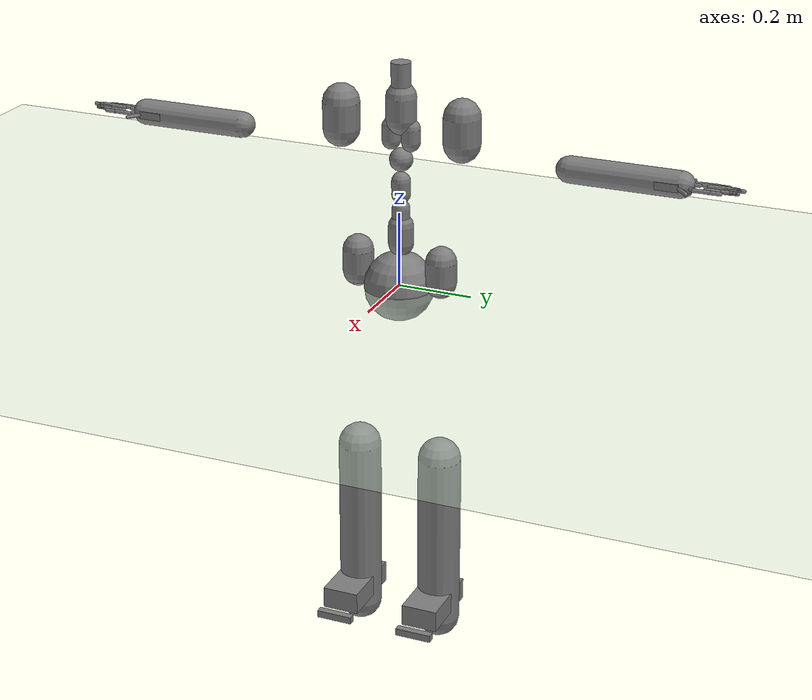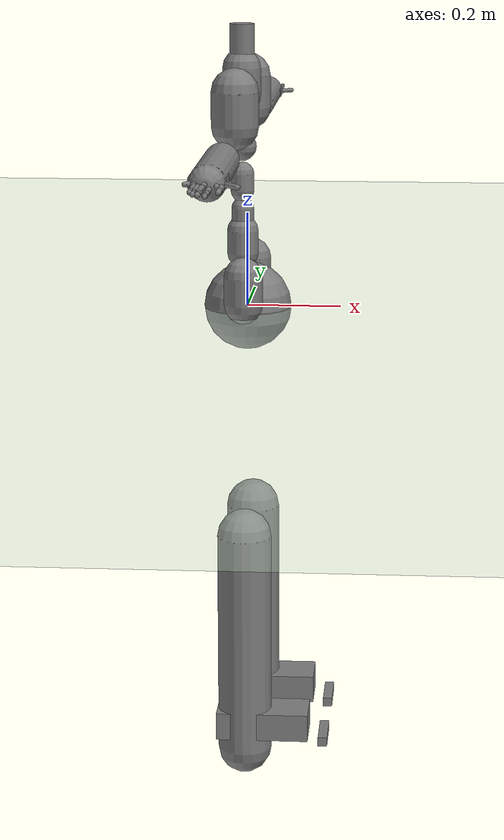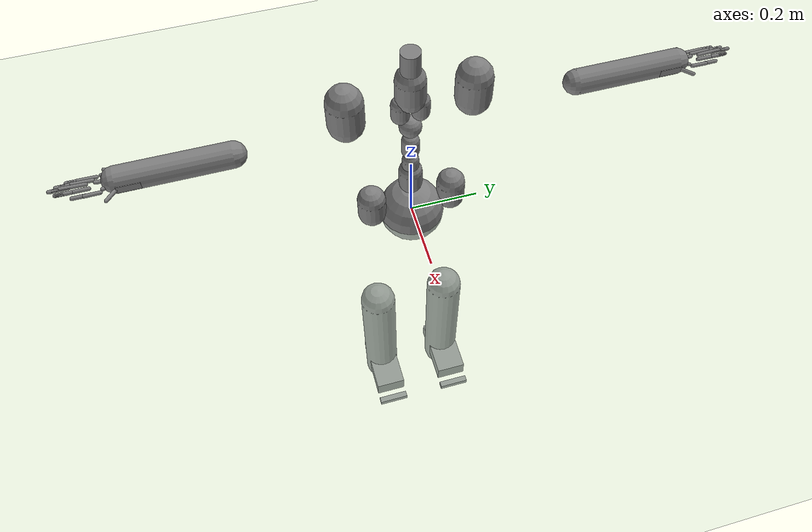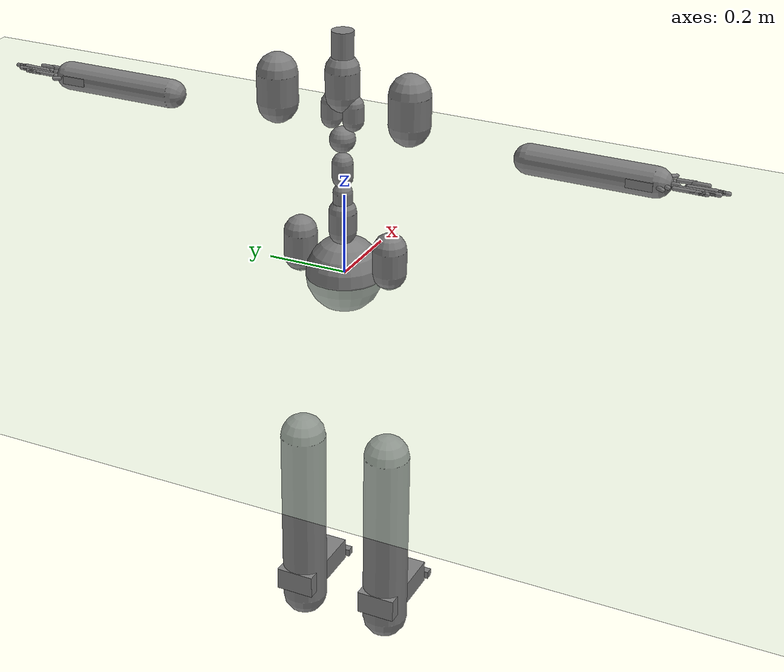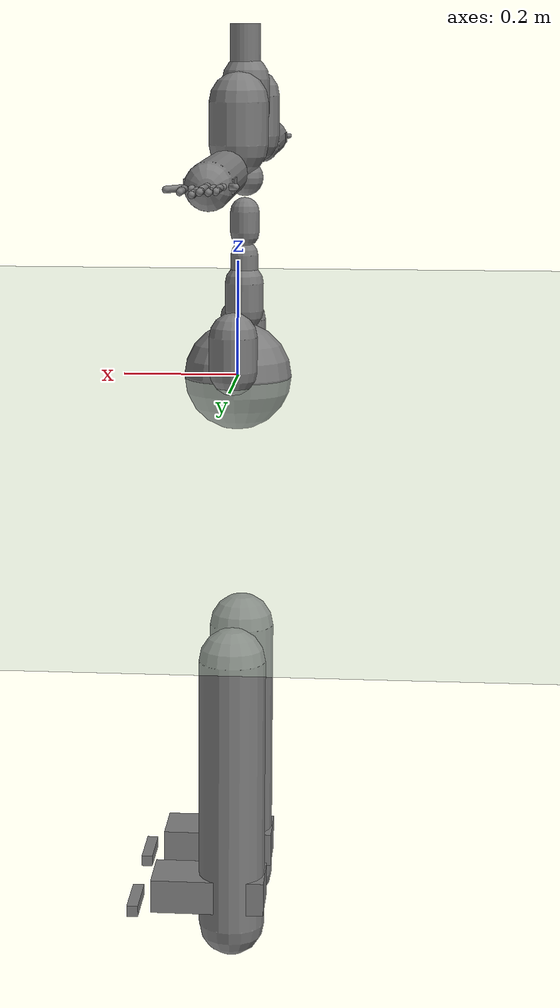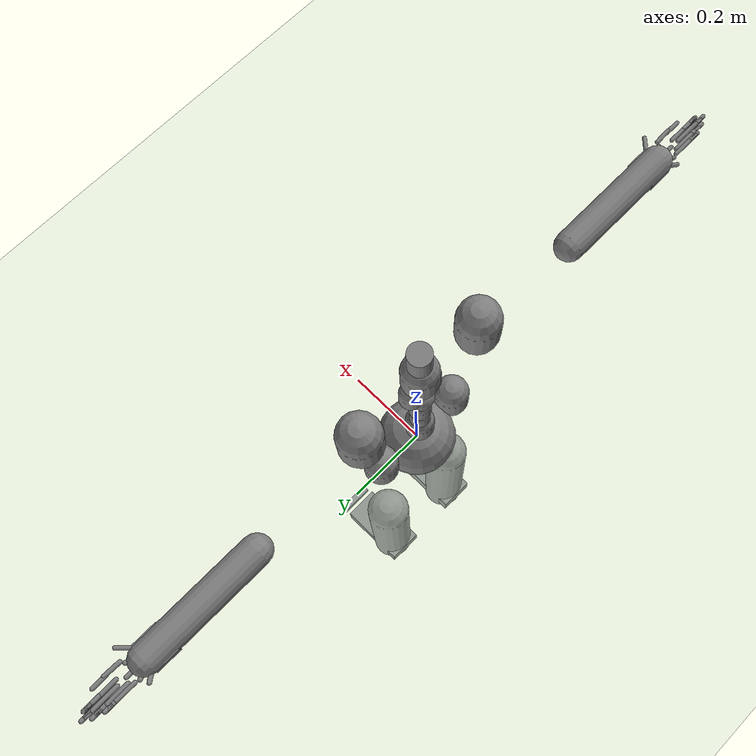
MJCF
<?xml version="1.0" ?>
<mujoco model="humanoid">
  <compiler coordinate="local"/>
  <statistic extent="2" center="0 0 1"/>
  <option timestep="0.00555"/>
  <default>
    <motor ctrlrange="-1 1" ctrllimited="true"/>
    <geom type="capsule" condim="1" friction="1.0 0.05 0.05" solimp=".9 .99 .003" solref=".015 1"/>
    <joint type="hinge" damping="0.1" stiffness="5" armature=".007" limited="true" solimplimit="0 .99 .01"/>
    <site size=".04" group="3"/>
  </default>
  <asset>
    <texture type="skybox" builtin="gradient" rgb1=".4 .5 .6" rgb2="0 0 0" width="100" height="100"/>
    <texture builtin="flat" height="1278" mark="cross" markrgb="1 1 1" name="texgeom" random="0.01" rgb1="0.8 0.6 0.4" rgb2="0.8 0.6 0.4" type="cube" width="127"/>
    <texture builtin="checker" height="100" name="texplane" rgb1="0 0 0" rgb2="0.8 0.8 0.8" type="2d" width="100"/>
    <material name="MatPlane" reflectance="0.5" shininess="1" specular="1" texrepeat="60 60" texture="texplane"/>
    <material name="geom" texture="texgeom" texuniform="true"/>
  </asset>
  <worldbody>
    <light cutoff="100" diffuse="1 1 1" dir="-0 0 -1.3" directional="true" exponent="1" pos="0 0 1.3" specular=".1 .1 .1"/>
    <geom conaffinity="1" condim="3" name="floor" pos="0 0 0" rgba="0.8 0.9 0.8 1" size="100 100 .2" type="plane" material="MatPlane"/>
    <body name="pHipOrigin" pos="0 0 0">
      <freejoint name="pHipOrigin"/>
      <geom type="sphere" contype="1" conaffinity="1" density="4629.6296296296305" size="0.09387" pos="0.0000 0.0000 -0.0000"/>
      <body name="jL5S1" pos="-0.01057824 0 0.09520390">
        <geom type="capsule" contype="1" conaffinity="1" density="1000" fromto="0 0 0.01916 0 0 0.06705" size="0.03353"/>
        <joint name="jL5S1_x" type="hinge" pos="0 0 0" axis="1 0 0" stiffness="500" damping="500" armature="0.02" range="-180.0000 180.0000"/>
        <joint name="jL5S1_y" type="hinge" pos="0 0 0" axis="0 1 0" stiffness="500" damping="500" armature="0.02" range="-180.0000 180.0000"/>
        <joint name="jL5S1_z" type="hinge" pos="0 0 0" axis="0 0 1" stiffness="500" damping="500" armature="0.02" range="-180.0000 180.0000"/>
        <body name="jL4L3" pos="0 0 0.06800943">
          <geom type="capsule" contype="1" conaffinity="1" density="1000" fromto="0 0 0.01360 0 0 0.04761" size="0.02380"/>
          <joint name="jL4L3_x" type="hinge" pos="0 0 0" axis="1 0 0" stiffness="500" damping="500" armature="0.02" range="-180.0000 180.0000"/>
          <joint name="jL4L3_y" type="hinge" pos="0 0 0" axis="0 1 0" stiffness="500" damping="500" armature="0.02" range="-180.0000 180.0000"/>
          <joint name="jL4L3_z" type="hinge" pos="0 0 0" axis="0 0 1" stiffness="500" damping="500" armature="0.02" range="-180.0000 180.0000"/>
          <body name="jL1T12" pos="-0.00055272 0 0.07164293">
            <geom type="capsule" contype="1" conaffinity="1" density="1000" fromto="0 0 0.01433 0 0 0.05015" size="0.02508"/>
            <joint name="jL1T12_x" type="hinge" pos="0 0 0" axis="1 0 0" stiffness="500" damping="500" armature="0.02" range="-180.0000 180.0000"/>
            <joint name="jL1T12_y" type="hinge" pos="0 0 0" axis="0 1 0" stiffness="500" damping="500" armature="0.02" range="-180.0000 180.0000"/>
            <joint name="jL1T12_z" type="hinge" pos="0 0 0" axis="0 0 1" stiffness="500" damping="500" armature="0.02" range="-180.0000 180.0000"/>
            <body name="jT9T8" pos="-0.00059824 0 0.07739216">
              <geom type="sphere" contype="1" conaffinity="1" density="1000" size="0.03096" pos="0.000 0.0000 0.030958"/>
              <joint name="jT9T8_x" type="hinge" pos="0 0 0" axis="1 0 0" stiffness="500" damping="500" armature="0.02" range="-180.0000 180.0000"/>
              <joint name="jT9T8_y" type="hinge" pos="0 0 0" axis="0 1 0" stiffness="500" damping="500" armature="0.02" range="-180.0000 180.0000"/>
              <joint name="jT9T8_z" type="hinge" pos="0 0 0" axis="0 0 1" stiffness="500" damping="500" armature="0.02" range="-180.0000 180.0000"/>
              <body name="jT1C7" pos="0 0 0.11539599">
                <geom type="capsule" contype="1" conaffinity="1" density="1000" fromto="0 0 0.02308 0 0 0.08078" size="0.04039"/>
                <joint name="jT1C7_x" type="hinge" pos="0 0 0" axis="1 0 0" stiffness="500" damping="500" armature="0.02" range="-180.0000 180.0000"/>
                <joint name="jT1C7_y" type="hinge" pos="0 0 0" axis="0 1 0" stiffness="500" damping="500" armature="0.02" range="-180.0000 180.0000"/>
                <joint name="jT1C7_z" type="hinge" pos="0 0 0" axis="0 0 1" stiffness="500" damping="500" armature="0.02" range="-180.0000 180.0000"/>
                <body name="jC1Head" pos="0.00102152 0 0.08658718">
                  <geom type="cylinder" contype="1" conaffinity="1" density="1000" fromto="0 0 0 0 0 0.08659" size="0.02598"/>
                  <joint name="jC1Head_x" type="hinge" pos="0 0 0" axis="1 0 0" stiffness="500" damping="500" armature="0.02" range="-180.0000 180.0000"/>
                  <joint name="jC1Head_y" type="hinge" pos="0 0 0" axis="0 1 0" stiffness="500" damping="500" armature="0.02" range="-180.0000 180.0000"/>
                  <joint name="jC1Head_z" type="hinge" pos="0 0 0" axis="0 0 1" stiffness="500" damping="500" armature="0.02" range="-180.0000 180.0000"/>
                </body>
              </body>
              <body name="jRightT4Shoulder" pos="0 -0.02712495 0.06613659">
                <geom type="capsule" contype="1" conaffinity="1" density="1000" fromto="0 0 0.01430 0 0 0.05004" size="0.02502"/>
                <joint name="jRightT4Shoulder_x" type="hinge" pos="0 0 0" axis="1 0 0" stiffness="500" damping="500" armature="0.02" range="-180.0000 180.0000"/>
                <joint name="jRightT4Shoulder_y" type="hinge" pos="0 0 0" axis="0 1 0" stiffness="500" damping="500" armature="0.02" range="-180.0000 180.0000"/>
                <joint name="jRightT4Shoulder_z" type="hinge" pos="0 0 0" axis="0 0 1" stiffness="500" damping="500" armature="0.02" range="-180.0000 180.0000"/>
                <body name="jRightShoulder" pos="0 -0.14019074 0">
                  <geom type="capsule" contype="1" conaffinity="1" density="1000" fromto="0 0 0.02804 0 0 0.09813" size="0.04907"/>
                  <joint name="jRightShoulder_x" type="hinge" pos="0 0 0" axis="1 0 0" stiffness="500" damping="500" armature="0.02" range="-180.0000 180.0000"/>
                  <joint name="jRightShoulder_y" type="hinge" pos="0 0 0" axis="0 1 0" stiffness="500" damping="500" armature="0.02" range="-180.0000 180.0000"/>
                  <joint name="jRightShoulder_z" type="hinge" pos="0 0 0" axis="0 0 1" stiffness="500" damping="500" armature="0.02" range="-180.0000 180.0000"/>
                  <body name="jRightElbow" pos="0 -0.28704521 0">
                    <geom type="capsule" contype="1" conaffinity="1" density="1000" fromto="0 0 0 0.00000000 -0.28704521 0.00000000" size="0.03445"/>
                    <joint name="jRightElbow_x" type="hinge" pos="0 0 0" axis="1 0 0" stiffness="500" damping="500" armature="0.02" range="-180.0000 180.0000"/>
                    <joint name="jRightElbow_y" type="hinge" pos="0 0 0" axis="0 1 0" stiffness="500" damping="500" armature="0.02" range="-180.0000 180.0000"/>
                    <joint name="jRightElbow_z" type="hinge" pos="0 0 0" axis="0 0 1" stiffness="500" damping="500" armature="0.02" range="-180.0000 180.0000"/>
                    <body name="jRightWrist" pos="0.00010407 -0.25857914 0">
                      <geom density="1000" type="box" pos="0 0 0" size="0.035 0.03 0.01" quat="1.0000 0.0000 0.0000 0.0000"/>
                      <joint name="jRightWrist_x" type="hinge" pos="0 0 0" axis="1 0 0" stiffness="500" damping="500" armature="0.02" range="-180.0000 180.0000"/>
                      <joint name="jRightWrist_y" type="hinge" pos="0 0 0" axis="0 1 0" stiffness="500" damping="500" armature="0.02" range="-180.0000 180.0000"/>
                      <joint name="jRightWrist_z" type="hinge" pos="0 0 0" axis="0 0 1" stiffness="500" damping="500" armature="0.02" range="-180.0000 180.0000"/>
                      <body name="jRightFirstCMC" pos="0.02867077 -0.02748255 -0.00129839">
                        <geom type="capsule" contype="1" conaffinity="1" density="1000" fromto="0 0 0 0.02867077 -0.02748255 -0.00129839" size="0.005"/>
                        <joint name="jRightFirstCMC_x" type="hinge" pos="0 0 0" axis="1 0 0" stiffness="500" damping="500" armature="0.02" range="-180.0000 180.0000"/>
                        <joint name="jRightFirstCMC_y" type="hinge" pos="0 0 0" axis="0 1 0" stiffness="500" damping="500" armature="0.02" range="-180.0000 180.0000"/>
                        <joint name="jRightFirstCMC_z" type="hinge" pos="0 0 0" axis="0 0 1" stiffness="500" damping="500" armature="0.02" range="-180.0000 180.0000"/>
                        <body name="jRightFirstMCP" pos="0.00135726 -0.03830100 0.00080930">
                          <geom type="capsule" contype="1" conaffinity="1" density="1000" fromto="0 0 0 0.00135726 -0.03830100 0.00080930" size="0.005"/>
                          <joint name="jRightFirstMCP_x" type="hinge" pos="0 0 0" axis="1 0 0" stiffness="500" damping="500" armature="0.02" range="-180.0000 180.0000"/>
                          <joint name="jRightFirstMCP_y" type="hinge" pos="0 0 0" axis="0 1 0" stiffness="500" damping="500" armature="0.02" range="-180.0000 180.0000"/>
                          <joint name="jRightFirstMCP_z" type="hinge" pos="0 0 0" axis="0 0 1" stiffness="500" damping="500" armature="0.02" range="-180.0000 180.0000"/>
                          <body name="jRightIP" pos="0 -0.03366405 0">
                            <geom type="capsule" contype="1" conaffinity="1" density="1000" fromto="0 0 0 0.00000000 -0.03366405 0.00000000" size="0.005"/>
                            <joint name="jRightIP_x" type="hinge" pos="0 0 0" axis="1 0 0" stiffness="500" damping="500" armature="0.02" range="-180.0000 180.0000"/>
                            <joint name="jRightIP_y" type="hinge" pos="0 0 0" axis="0 1 0" stiffness="500" damping="500" armature="0.02" range="-180.0000 180.0000"/>
                            <joint name="jRightIP_z" type="hinge" pos="0 0 0" axis="0 0 1" stiffness="500" damping="500" armature="0.02" range="-180.0000 180.0000"/>
                          </body>
                        </body>
                      </body>
                      <body name="jRightSecondCMC" pos="0.01036833 -0.03029297 -0.00052838">
                        <geom type="capsule" contype="1" conaffinity="1" density="1000" fromto="0 0 0 0.01036833 -0.03029297 -0.00052838" size="0.005"/>
                        <joint name="jRightSecondCMC_x" type="hinge" pos="0 0 0" axis="1 0 0" stiffness="500" damping="500" armature="0.02" range="-180.0000 180.0000"/>
                        <joint name="jRightSecondCMC_y" type="hinge" pos="0 0 0" axis="0 1 0" stiffness="500" damping="500" armature="0.02" range="-180.0000 180.0000"/>
                        <joint name="jRightSecondCMC_z" type="hinge" pos="0 0 0" axis="0 0 1" stiffness="500" damping="500" armature="0.02" range="-180.0000 180.0000"/>
                        <body name="jRightSecondMCP" pos="-0.00038861 -0.06198025 -0.00064294">
                          <geom type="capsule" contype="1" conaffinity="1" density="1000" fromto="0 0 0 -0.00038861 -0.06198025 -0.00064294" size="0.005"/>
                          <joint name="jRightSecondMCP_x" type="hinge" pos="0 0 0" axis="1 0 0" stiffness="500" damping="500" armature="0.02" range="-180.0000 180.0000"/>
                          <joint name="jRightSecondMCP_y" type="hinge" pos="0 0 0" axis="0 1 0" stiffness="500" damping="500" armature="0.02" range="-180.0000 180.0000"/>
                          <joint name="jRightSecondMCP_z" type="hinge" pos="0 0 0" axis="0 0 1" stiffness="500" damping="500" armature="0.02" range="-180.0000 180.0000"/>
                          <body name="jRightSecondPIP" pos="0 -0.03964959 0">
                            <geom type="capsule" contype="1" conaffinity="1" density="1000" fromto="0 0 0 0.00000000 -0.03964959 0.00000000" size="0.005"/>
                            <joint name="jRightSecondPIP_x" type="hinge" pos="0 0 0" axis="1 0 0" stiffness="500" damping="500" armature="0.02" range="-180.0000 180.0000"/>
                            <joint name="jRightSecondPIP_y" type="hinge" pos="0 0 0" axis="0 1 0" stiffness="500" damping="500" armature="0.02" range="-180.0000 180.0000"/>
                            <joint name="jRightSecondPIP_z" type="hinge" pos="0 0 0" axis="0 0 1" stiffness="500" damping="500" armature="0.02" range="-180.0000 180.0000"/>
                            <body name="jRightSecondDIP" pos="0 -0.01991093 0">
                              <geom type="capsule" contype="1" conaffinity="1" density="1000" fromto="0 0 0 0.00000000 -0.01991093 0.00000000" size="0.005"/>
                              <joint name="jRightSecondDIP_x" type="hinge" pos="0 0 0" axis="1 0 0" stiffness="500" damping="500" armature="0.02" range="-180.0000 180.0000"/>
                              <joint name="jRightSecondDIP_y" type="hinge" pos="0 0 0" axis="0 1 0" stiffness="500" damping="500" armature="0.02" range="-180.0000 180.0000"/>
                              <joint name="jRightSecondDIP_z" type="hinge" pos="0 0 0" axis="0 0 1" stiffness="500" damping="500" armature="0.02" range="-180.0000 180.0000"/>
                            </body>
                          </body>
                        </body>
                      </body>
                      <body name="jRightThirdCMC" pos="-0.00069413 -0.03753679 0.00157810">
                        <geom type="capsule" contype="1" conaffinity="1" density="1000" fromto="0 0 0 -0.00069413 -0.03753679 0.00157810" size="0.005"/>
                        <joint name="jRightThirdCMC_x" type="hinge" pos="0 0 0" axis="1 0 0" stiffness="500" damping="500" armature="0.02" range="-180.0000 180.0000"/>
                        <joint name="jRightThirdCMC_y" type="hinge" pos="0 0 0" axis="0 1 0" stiffness="500" damping="500" armature="0.02" range="-180.0000 180.0000"/>
                        <joint name="jRightThirdCMC_z" type="hinge" pos="0 0 0" axis="0 0 1" stiffness="500" damping="500" armature="0.02" range="-180.0000 180.0000"/>
                        <body name="jRightThirdMCP" pos="-0.00072357 -0.05994753 0.00163094">
                          <geom type="capsule" contype="1" conaffinity="1" density="1000" fromto="0 0 0 -0.00072357 -0.05994753 0.00163094" size="0.005"/>
                          <joint name="jRightThirdMCP_x" type="hinge" pos="0 0 0" axis="1 0 0" stiffness="500" damping="500" armature="0.02" range="-180.0000 180.0000"/>
                          <joint name="jRightThirdMCP_y" type="hinge" pos="0 0 0" axis="0 1 0" stiffness="500" damping="500" armature="0.02" range="-180.0000 180.0000"/>
                          <joint name="jRightThirdMCP_z" type="hinge" pos="0 0 0" axis="0 0 1" stiffness="500" damping="500" armature="0.02" range="-180.0000 180.0000"/>
                          <body name="jRightThirdPIP" pos="0 -0.03983186 0">
                            <geom type="capsule" contype="1" conaffinity="1" density="1000" fromto="0 0 0 0.00000000 -0.03983186 0.00000000" size="0.005"/>
                            <joint name="jRightThirdPIP_x" type="hinge" pos="0 0 0" axis="1 0 0" stiffness="500" damping="500" armature="0.02" range="-180.0000 180.0000"/>
                            <joint name="jRightThirdPIP_y" type="hinge" pos="0 0 0" axis="0 1 0" stiffness="500" damping="500" armature="0.02" range="-180.0000 180.0000"/>
                            <joint name="jRightThirdPIP_z" type="hinge" pos="0 0 0" axis="0 0 1" stiffness="500" damping="500" armature="0.02" range="-180.0000 180.0000"/>
                            <body name="jRightThirdDIP" pos="0 -0.02356356 0">
                              <geom type="capsule" contype="1" conaffinity="1" density="1000" fromto="0 0 0 0.00000000 -0.02356356 0.00000000" size="0.005"/>
                              <joint name="jRightThirdDIP_x" type="hinge" pos="0 0 0" axis="1 0 0" stiffness="500" damping="500" armature="0.02" range="-180.0000 180.0000"/>
                              <joint name="jRightThirdDIP_y" type="hinge" pos="0 0 0" axis="0 1 0" stiffness="500" damping="500" armature="0.02" range="-180.0000 180.0000"/>
                              <joint name="jRightThirdDIP_z" type="hinge" pos="0 0 0" axis="0 0 1" stiffness="500" damping="500" armature="0.02" range="-180.0000 180.0000"/>
                            </body>
                          </body>
                        </body>
                      </body>
                      <body name="jRightFourthCMC" pos="-0.01084320 -0.03020011 0.00071086">
                        <geom type="capsule" contype="1" conaffinity="1" density="1000" fromto="0 0 0 -0.01084320 -0.03020011 0.00071086" size="0.005"/>
                        <joint name="jRightFourthCMC_x" type="hinge" pos="0 0 0" axis="1 0 0" stiffness="500" damping="500" armature="0.02" range="-180.0000 180.0000"/>
                        <joint name="jRightFourthCMC_y" type="hinge" pos="0 0 0" axis="0 1 0" stiffness="500" damping="500" armature="0.02" range="-180.0000 180.0000"/>
                        <joint name="jRightFourthCMC_z" type="hinge" pos="0 0 0" axis="0 0 1" stiffness="500" damping="500" armature="0.02" range="-180.0000 180.0000"/>
                        <body name="jRightFourthMCP" pos="-0.00037073 -0.05081267 0.00079831">
                          <geom type="capsule" contype="1" conaffinity="1" density="1000" fromto="0 0 0 -0.00037073 -0.05081267 0.00079831" size="0.005"/>
                          <joint name="jRightFourthMCP_x" type="hinge" pos="0 0 0" axis="1 0 0" stiffness="500" damping="500" armature="0.02" range="-180.0000 180.0000"/>
                          <joint name="jRightFourthMCP_y" type="hinge" pos="0 0 0" axis="0 1 0" stiffness="500" damping="500" armature="0.02" range="-180.0000 180.0000"/>
                          <joint name="jRightFourthMCP_z" type="hinge" pos="0 0 0" axis="0 0 1" stiffness="500" damping="500" armature="0.02" range="-180.0000 180.0000"/>
                          <body name="jRightFourthPIP" pos="0 -0.03931124 0">
                            <geom type="capsule" contype="1" conaffinity="1" density="1000" fromto="0 0 0 0.00000000 -0.03931124 0.00000000" size="0.005"/>
                            <joint name="jRightFourthPIP_x" type="hinge" pos="0 0 0" axis="1 0 0" stiffness="500" damping="500" armature="0.02" range="-180.0000 180.0000"/>
                            <joint name="jRightFourthPIP_y" type="hinge" pos="0 0 0" axis="0 1 0" stiffness="500" damping="500" armature="0.02" range="-180.0000 180.0000"/>
                            <joint name="jRightFourthPIP_z" type="hinge" pos="0 0 0" axis="0 0 1" stiffness="500" damping="500" armature="0.02" range="-180.0000 180.0000"/>
                            <body name="jRightFourthDIP" pos="0 -0.02392031 0">
                              <geom type="capsule" contype="1" conaffinity="1" density="1000" fromto="0 0 0 0.00000000 -0.02392031 0.00000000" size="0.005"/>
                              <joint name="jRightFourthDIP_x" type="hinge" pos="0 0 0" axis="1 0 0" stiffness="500" damping="500" armature="0.02" range="-180.0000 180.0000"/>
                              <joint name="jRightFourthDIP_y" type="hinge" pos="0 0 0" axis="0 1 0" stiffness="500" damping="500" armature="0.02" range="-180.0000 180.0000"/>
                              <joint name="jRightFourthDIP_z" type="hinge" pos="0 0 0" axis="0 0 1" stiffness="500" damping="500" armature="0.02" range="-180.0000 180.0000"/>
                            </body>
                          </body>
                        </body>
                      </body>
                      <body name="jRightFifthCMC" pos="-0.01897285 -0.02643650 0.00052151">
                        <geom type="capsule" contype="1" conaffinity="1" density="1000" fromto="0 0 0 -0.01897285 -0.02643650 0.00052151" size="0.005"/>
                        <joint name="jRightFifthCMC_x" type="hinge" pos="0 0 0" axis="1 0 0" stiffness="500" damping="500" armature="0.02" range="-180.0000 180.0000"/>
                        <joint name="jRightFifthCMC_y" type="hinge" pos="0 0 0" axis="0 1 0" stiffness="500" damping="500" armature="0.02" range="-180.0000 180.0000"/>
                        <joint name="jRightFifthCMC_z" type="hinge" pos="0 0 0" axis="0 0 1" stiffness="500" damping="500" armature="0.02" range="-180.0000 180.0000"/>
                        <body name="jRightFifthMCP" pos="-0.00000666 -0.04512176 0.00062093">
                          <geom type="capsule" contype="1" conaffinity="1" density="1000" fromto="0 0 0 -0.00000666 -0.04512176 0.00062093" size="0.005"/>
                          <joint name="jRightFifthMCP_x" type="hinge" pos="0 0 0" axis="1 0 0" stiffness="500" damping="500" armature="0.02" range="-180.0000 180.0000"/>
                          <joint name="jRightFifthMCP_y" type="hinge" pos="0 0 0" axis="0 1 0" stiffness="500" damping="500" armature="0.02" range="-180.0000 180.0000"/>
                          <joint name="jRightFifthMCP_z" type="hinge" pos="0 0 0" axis="0 0 1" stiffness="500" damping="500" armature="0.02" range="-180.0000 180.0000"/>
                          <body name="jRightFifthPIP" pos="0 -0.03409718 0">
                            <geom type="capsule" contype="1" conaffinity="1" density="1000" fromto="0 0 0 0.00000000 -0.03409718 0.00000000" size="0.005"/>
                            <joint name="jRightFifthPIP_x" type="hinge" pos="0 0 0" axis="1 0 0" stiffness="500" damping="500" armature="0.02" range="-180.0000 180.0000"/>
                            <joint name="jRightFifthPIP_y" type="hinge" pos="0 0 0" axis="0 1 0" stiffness="500" damping="500" armature="0.02" range="-180.0000 180.0000"/>
                            <joint name="jRightFifthPIP_z" type="hinge" pos="0 0 0" axis="0 0 1" stiffness="500" damping="500" armature="0.02" range="-180.0000 180.0000"/>
                            <body name="jRightFifthDIP" pos="0 -0.01906925 0">
                              <geom type="capsule" contype="1" conaffinity="1" density="1000" fromto="0 0 0 0.00000000 -0.01906925 0.00000000" size="0.005"/>
                              <joint name="jRightFifthDIP_x" type="hinge" pos="0 0 0" axis="1 0 0" stiffness="500" damping="500" armature="0.02" range="-180.0000 180.0000"/>
                              <joint name="jRightFifthDIP_y" type="hinge" pos="0 0 0" axis="0 1 0" stiffness="500" damping="500" armature="0.02" range="-180.0000 180.0000"/>
                              <joint name="jRightFifthDIP_z" type="hinge" pos="0 0 0" axis="0 0 1" stiffness="500" damping="500" armature="0.02" range="-180.0000 180.0000"/>
                            </body>
                          </body>
                        </body>
                      </body>
                    </body>
                  </body>
                </body>
              </body>
              <body name="jLeftT4Shoulder" pos="0 0.02708384 0.06603634">
                <geom type="capsule" contype="1" conaffinity="1" density="1000" fromto="0 0 0.01427 0 0 0.04996" size="0.02498"/>
                <joint name="jLeftT4Shoulder_x" type="hinge" pos="0 0 0" axis="1 0 0" stiffness="500" damping="500" armature="0.02" range="-180.0000 180.0000"/>
                <joint name="jLeftT4Shoulder_y" type="hinge" pos="0 0 0" axis="0 1 0" stiffness="500" damping="500" armature="0.02" range="-180.0000 180.0000"/>
                <joint name="jLeftT4Shoulder_z" type="hinge" pos="0 0 0" axis="0 0 1" stiffness="500" damping="500" armature="0.02" range="-180.0000 180.0000"/>
                <body name="jLeftShoulder" pos="0 0.13957411 0">
                  <geom type="capsule" contype="1" conaffinity="1" density="1000" fromto="0 0 0.02791 0 0 0.09770" size="0.04885"/>
                  <joint name="jLeftShoulder_x" type="hinge" pos="0 0 0" axis="1 0 0" stiffness="500" damping="500" armature="0.02" range="-180.0000 180.0000"/>
                  <joint name="jLeftShoulder_y" type="hinge" pos="0 0 0" axis="0 1 0" stiffness="500" damping="500" armature="0.02" range="-180.0000 180.0000"/>
                  <joint name="jLeftShoulder_z" type="hinge" pos="0 0 0" axis="0 0 1" stiffness="500" damping="500" armature="0.02" range="-180.0000 180.0000"/>
                  <body name="jLeftElbow" pos="0 0.28637841 0">
                    <geom type="capsule" contype="1" conaffinity="1" density="1000" fromto="0 0 0 0.00000000 0.28637841 0.00000000" size="0.03437"/>
                    <joint name="jLeftElbow_x" type="hinge" pos="0 0 0" axis="1 0 0" stiffness="500" damping="500" armature="0.02" range="-180.0000 180.0000"/>
                    <joint name="jLeftElbow_y" type="hinge" pos="0 0 0" axis="0 1 0" stiffness="500" damping="500" armature="0.02" range="-180.0000 180.0000"/>
                    <joint name="jLeftElbow_z" type="hinge" pos="0 0 0" axis="0 0 1" stiffness="500" damping="500" armature="0.02" range="-180.0000 180.0000"/>
                    <body name="jLeftWrist" pos="0.00010351 0.25717825 0">
                      <geom density="1000" type="box" pos="0 0 0" size="0.035 0.03 0.01" quat="1.0000 0.0000 0.0000 0.0000"/>
                      <joint name="jLeftWrist_x" type="hinge" pos="0 0 0" axis="1 0 0" stiffness="500" damping="500" armature="0.02" range="-180.0000 180.0000"/>
                      <joint name="jLeftWrist_y" type="hinge" pos="0 0 0" axis="0 1 0" stiffness="500" damping="500" armature="0.02" range="-180.0000 180.0000"/>
                      <joint name="jLeftWrist_z" type="hinge" pos="0 0 0" axis="0 0 1" stiffness="500" damping="500" armature="0.02" range="-180.0000 180.0000"/>
                      <body name="jLeftFirstCMC" pos="0.02806193 0.02812820 -0.00125596">
                        <geom type="capsule" contype="1" conaffinity="1" density="1000" fromto="0 0 0 0.02806193 0.02812820 -0.00125596" size="0.005"/>
                        <joint name="jLeftFirstCMC_x" type="hinge" pos="0 0 0" axis="1 0 0" stiffness="500" damping="500" armature="0.02" range="-180.0000 180.0000"/>
                        <joint name="jLeftFirstCMC_y" type="hinge" pos="0 0 0" axis="0 1 0" stiffness="500" damping="500" armature="0.02" range="-180.0000 180.0000"/>
                        <joint name="jLeftFirstCMC_z" type="hinge" pos="0 0 0" axis="0 0 1" stiffness="500" damping="500" armature="0.02" range="-180.0000 180.0000"/>
                        <body name="jLeftFirstMCP" pos="0.00134419 0.03830014 0.00078869">
                          <geom type="capsule" contype="1" conaffinity="1" density="1000" fromto="0 0 0 0.00134419 0.03830014 0.00078869" size="0.005"/>
                          <joint name="jLeftFirstMCP_x" type="hinge" pos="0 0 0" axis="1 0 0" stiffness="500" damping="500" armature="0.02" range="-180.0000 180.0000"/>
                          <joint name="jLeftFirstMCP_y" type="hinge" pos="0 0 0" axis="0 1 0" stiffness="500" damping="500" armature="0.02" range="-180.0000 180.0000"/>
                          <joint name="jLeftFirstMCP_z" type="hinge" pos="0 0 0" axis="0 0 1" stiffness="500" damping="500" armature="0.02" range="-180.0000 180.0000"/>
                          <body name="jLeftIP" pos="0 0.03366405 0">
                            <geom type="capsule" contype="1" conaffinity="1" density="1000" fromto="0 0 0 0.00000000 0.03366405 0.00000000" size="0.005"/>
                            <joint name="jLeftIP_x" type="hinge" pos="0 0 0" axis="1 0 0" stiffness="500" damping="500" armature="0.02" range="-180.0000 180.0000"/>
                            <joint name="jLeftIP_y" type="hinge" pos="0 0 0" axis="0 1 0" stiffness="500" damping="500" armature="0.02" range="-180.0000 180.0000"/>
                            <joint name="jLeftIP_z" type="hinge" pos="0 0 0" axis="0 0 1" stiffness="500" damping="500" armature="0.02" range="-180.0000 180.0000"/>
                          </body>
                        </body>
                      </body>
                      <body name="jLeftSecondCMC" pos="0.01048775 0.03023723 -0.00053275">
                        <geom type="capsule" contype="1" conaffinity="1" density="1000" fromto="0 0 0 0.01048775 0.03023723 -0.00053275" size="0.005"/>
                        <joint name="jLeftSecondCMC_x" type="hinge" pos="0 0 0" axis="1 0 0" stiffness="500" damping="500" armature="0.02" range="-180.0000 180.0000"/>
                        <joint name="jLeftSecondCMC_y" type="hinge" pos="0 0 0" axis="0 1 0" stiffness="500" damping="500" armature="0.02" range="-180.0000 180.0000"/>
                        <joint name="jLeftSecondCMC_z" type="hinge" pos="0 0 0" axis="0 0 1" stiffness="500" damping="500" armature="0.02" range="-180.0000 180.0000"/>
                        <body name="jLeftSecondMCP" pos="-0.00033884 0.06198152 -0.00065088">
                          <geom type="capsule" contype="1" conaffinity="1" density="1000" fromto="0 0 0 -0.00033884 0.06198152 -0.00065088" size="0.005"/>
                          <joint name="jLeftSecondMCP_x" type="hinge" pos="0 0 0" axis="1 0 0" stiffness="500" damping="500" armature="0.02" range="-180.0000 180.0000"/>
                          <joint name="jLeftSecondMCP_y" type="hinge" pos="0 0 0" axis="0 1 0" stiffness="500" damping="500" armature="0.02" range="-180.0000 180.0000"/>
                          <joint name="jLeftSecondMCP_z" type="hinge" pos="0 0 0" axis="0 0 1" stiffness="500" damping="500" armature="0.02" range="-180.0000 180.0000"/>
                          <body name="jLeftSecondPIP" pos="0 0.03964959 0">
                            <geom type="capsule" contype="1" conaffinity="1" density="1000" fromto="0 0 0 0.00000000 0.03964959 0.00000000" size="0.005"/>
                            <joint name="jLeftSecondPIP_x" type="hinge" pos="0 0 0" axis="1 0 0" stiffness="500" damping="500" armature="0.02" range="-180.0000 180.0000"/>
                            <joint name="jLeftSecondPIP_y" type="hinge" pos="0 0 0" axis="0 1 0" stiffness="500" damping="500" armature="0.02" range="-180.0000 180.0000"/>
                            <joint name="jLeftSecondPIP_z" type="hinge" pos="0 0 0" axis="0 0 1" stiffness="500" damping="500" armature="0.02" range="-180.0000 180.0000"/>
                            <body name="jLeftSecondDIP" pos="0 0.01991093 0">
                              <geom type="capsule" contype="1" conaffinity="1" density="1000" fromto="0 0 0 0.00000000 0.01991093 0.00000000" size="0.005"/>
                              <joint name="jLeftSecondDIP_x" type="hinge" pos="0 0 0" axis="1 0 0" stiffness="500" damping="500" armature="0.02" range="-180.0000 180.0000"/>
                              <joint name="jLeftSecondDIP_y" type="hinge" pos="0 0 0" axis="0 1 0" stiffness="500" damping="500" armature="0.02" range="-180.0000 180.0000"/>
                              <joint name="jLeftSecondDIP_z" type="hinge" pos="0 0 0" axis="0 0 1" stiffness="500" damping="500" armature="0.02" range="-180.0000 180.0000"/>
                            </body>
                          </body>
                        </body>
                      </body>
                      <body name="jLeftThirdCMC" pos="-0.00069820 0.03754016 0.00152550">
                        <geom type="capsule" contype="1" conaffinity="1" density="1000" fromto="0 0 0 -0.00069820 0.03754016 0.00152550" size="0.005"/>
                        <joint name="jLeftThirdCMC_x" type="hinge" pos="0 0 0" axis="1 0 0" stiffness="500" damping="500" armature="0.02" range="-180.0000 180.0000"/>
                        <joint name="jLeftThirdCMC_y" type="hinge" pos="0 0 0" axis="0 1 0" stiffness="500" damping="500" armature="0.02" range="-180.0000 180.0000"/>
                        <joint name="jLeftThirdCMC_z" type="hinge" pos="0 0 0" axis="0 0 1" stiffness="500" damping="500" armature="0.02" range="-180.0000 180.0000"/>
                        <body name="jLeftThirdMCP" pos="-0.00072941 0.05994869 0.00159815">
                          <geom type="capsule" contype="1" conaffinity="1" density="1000" fromto="0 0 0 -0.00072941 0.05994869 0.00159815" size="0.005"/>
                          <joint name="jLeftThirdMCP_x" type="hinge" pos="0 0 0" axis="1 0 0" stiffness="500" damping="500" armature="0.02" range="-180.0000 180.0000"/>
                          <joint name="jLeftThirdMCP_y" type="hinge" pos="0 0 0" axis="0 1 0" stiffness="500" damping="500" armature="0.02" range="-180.0000 180.0000"/>
                          <joint name="jLeftThirdMCP_z" type="hinge" pos="0 0 0" axis="0 0 1" stiffness="500" damping="500" armature="0.02" range="-180.0000 180.0000"/>
                          <body name="jLeftThirdPIP" pos="0 0.03983186 0">
                            <geom type="capsule" contype="1" conaffinity="1" density="1000" fromto="0 0 0 0.00000000 0.03983186 0.00000000" size="0.005"/>
                            <joint name="jLeftThirdPIP_x" type="hinge" pos="0 0 0" axis="1 0 0" stiffness="500" damping="500" armature="0.02" range="-180.0000 180.0000"/>
                            <joint name="jLeftThirdPIP_y" type="hinge" pos="0 0 0" axis="0 1 0" stiffness="500" damping="500" armature="0.02" range="-180.0000 180.0000"/>
                            <joint name="jLeftThirdPIP_z" type="hinge" pos="0 0 0" axis="0 0 1" stiffness="500" damping="500" armature="0.02" range="-180.0000 180.0000"/>
                            <body name="jLeftThirdDIP" pos="0 0.02356356 0">
                              <geom type="capsule" contype="1" conaffinity="1" density="1000" fromto="0 0 0 0.00000000 0.02356356 0.00000000" size="0.005"/>
                              <joint name="jLeftThirdDIP_x" type="hinge" pos="0 0 0" axis="1 0 0" stiffness="500" damping="500" armature="0.02" range="-180.0000 180.0000"/>
                              <joint name="jLeftThirdDIP_y" type="hinge" pos="0 0 0" axis="0 1 0" stiffness="500" damping="500" armature="0.02" range="-180.0000 180.0000"/>
                              <joint name="jLeftThirdDIP_z" type="hinge" pos="0 0 0" axis="0 0 1" stiffness="500" damping="500" armature="0.02" range="-180.0000 180.0000"/>
                            </body>
                          </body>
                        </body>
                      </body>
                      <body name="jLeftFourthCMC" pos="-0.01124108 0.03004564 0.00075884">
                        <geom type="capsule" contype="1" conaffinity="1" density="1000" fromto="0 0 0 -0.01124108 0.03004564 0.00075884" size="0.005"/>
                        <joint name="jLeftFourthCMC_x" type="hinge" pos="0 0 0" axis="1 0 0" stiffness="500" damping="500" armature="0.02" range="-180.0000 180.0000"/>
                        <joint name="jLeftFourthCMC_y" type="hinge" pos="0 0 0" axis="0 1 0" stiffness="500" damping="500" armature="0.02" range="-180.0000 180.0000"/>
                        <joint name="jLeftFourthCMC_z" type="hinge" pos="0 0 0" axis="0 0 1" stiffness="500" damping="500" armature="0.02" range="-180.0000 180.0000"/>
                        <body name="jLeftFourthMCP" pos="-0.00039869 0.05080976 0.00084430">
                          <geom type="capsule" contype="1" conaffinity="1" density="1000" fromto="0 0 0 -0.00039869 0.05080976 0.00084430" size="0.005"/>
                          <joint name="jLeftFourthMCP_x" type="hinge" pos="0 0 0" axis="1 0 0" stiffness="500" damping="500" armature="0.02" range="-180.0000 180.0000"/>
                          <joint name="jLeftFourthMCP_y" type="hinge" pos="0 0 0" axis="0 1 0" stiffness="500" damping="500" armature="0.02" range="-180.0000 180.0000"/>
                          <joint name="jLeftFourthMCP_z" type="hinge" pos="0 0 0" axis="0 0 1" stiffness="500" damping="500" armature="0.02" range="-180.0000 180.0000"/>
                          <body name="jLeftFourthPIP" pos="0 0.03931124 0">
                            <geom type="capsule" contype="1" conaffinity="1" density="1000" fromto="0 0 0 0.00000000 0.03931124 0.00000000" size="0.005"/>
                            <joint name="jLeftFourthPIP_x" type="hinge" pos="0 0 0" axis="1 0 0" stiffness="500" damping="500" armature="0.02" range="-180.0000 180.0000"/>
                            <joint name="jLeftFourthPIP_y" type="hinge" pos="0 0 0" axis="0 1 0" stiffness="500" damping="500" armature="0.02" range="-180.0000 180.0000"/>
                            <joint name="jLeftFourthPIP_z" type="hinge" pos="0 0 0" axis="0 0 1" stiffness="500" damping="500" armature="0.02" range="-180.0000 180.0000"/>
                            <body name="jLeftFourthDIP" pos="0 0.02392031 0">
                              <geom type="capsule" contype="1" conaffinity="1" density="1000" fromto="0 0 0 0.00000000 0.02392031 0.00000000" size="0.005"/>
                              <joint name="jLeftFourthDIP_x" type="hinge" pos="0 0 0" axis="1 0 0" stiffness="500" damping="500" armature="0.02" range="-180.0000 180.0000"/>
                              <joint name="jLeftFourthDIP_y" type="hinge" pos="0 0 0" axis="0 1 0" stiffness="500" damping="500" armature="0.02" range="-180.0000 180.0000"/>
                              <joint name="jLeftFourthDIP_z" type="hinge" pos="0 0 0" axis="0 0 1" stiffness="500" damping="500" armature="0.02" range="-180.0000 180.0000"/>
                            </body>
                          </body>
                        </body>
                      </body>
                      <body name="jLeftFifthCMC" pos="-0.01954761 0.02601856 0.00052989">
                        <geom type="capsule" contype="1" conaffinity="1" density="1000" fromto="0 0 0 -0.01954761 0.02601856 0.00052989" size="0.005"/>
                        <joint name="jLeftFifthCMC_x" type="hinge" pos="0 0 0" axis="1 0 0" stiffness="500" damping="500" armature="0.02" range="-180.0000 180.0000"/>
                        <joint name="jLeftFifthCMC_y" type="hinge" pos="0 0 0" axis="0 1 0" stiffness="500" damping="500" armature="0.02" range="-180.0000 180.0000"/>
                        <joint name="jLeftFifthCMC_z" type="hinge" pos="0 0 0" axis="0 0 1" stiffness="500" damping="500" armature="0.02" range="-180.0000 180.0000"/>
                        <body name="jLeftFifthMCP" pos="-0.00001280 0.04512053 0.00064926">
                          <geom type="capsule" contype="1" conaffinity="1" density="1000" fromto="0 0 0 -0.00001280 0.04512053 0.00064926" size="0.005"/>
                          <joint name="jLeftFifthMCP_x" type="hinge" pos="0 0 0" axis="1 0 0" stiffness="500" damping="500" armature="0.02" range="-180.0000 180.0000"/>
                          <joint name="jLeftFifthMCP_y" type="hinge" pos="0 0 0" axis="0 1 0" stiffness="500" damping="500" armature="0.02" range="-180.0000 180.0000"/>
                          <joint name="jLeftFifthMCP_z" type="hinge" pos="0 0 0" axis="0 0 1" stiffness="500" damping="500" armature="0.02" range="-180.0000 180.0000"/>
                          <body name="jLeftFifthPIP" pos="0 0.03409718 0">
                            <geom type="capsule" contype="1" conaffinity="1" density="1000" fromto="0 0 0 0.00000000 0.03409718 0.00000000" size="0.005"/>
                            <joint name="jLeftFifthPIP_x" type="hinge" pos="0 0 0" axis="1 0 0" stiffness="500" damping="500" armature="0.02" range="-180.0000 180.0000"/>
                            <joint name="jLeftFifthPIP_y" type="hinge" pos="0 0 0" axis="0 1 0" stiffness="500" damping="500" armature="0.02" range="-180.0000 180.0000"/>
                            <joint name="jLeftFifthPIP_z" type="hinge" pos="0 0 0" axis="0 0 1" stiffness="500" damping="500" armature="0.02" range="-180.0000 180.0000"/>
                            <body name="jLeftFifthDIP" pos="0 0.01906925 0">
                              <geom type="capsule" contype="1" conaffinity="1" density="1000" fromto="0 0 0 0.00000000 0.01906925 0.00000000" size="0.005"/>
                              <joint name="jLeftFifthDIP_x" type="hinge" pos="0 0 0" axis="1 0 0" stiffness="500" damping="500" armature="0.02" range="-180.0000 180.0000"/>
                              <joint name="jLeftFifthDIP_y" type="hinge" pos="0 0 0" axis="0 1 0" stiffness="500" damping="500" armature="0.02" range="-180.0000 180.0000"/>
                              <joint name="jLeftFifthDIP_z" type="hinge" pos="0 0 0" axis="0 0 1" stiffness="500" damping="500" armature="0.02" range="-180.0000 180.0000"/>
                            </body>
                          </body>
                        </body>
                      </body>
                    </body>
                  </body>
                </body>
              </body>
            </body>
          </body>
        </body>
      </body>
      <body name="jRightHip" pos="-0.00019816 -0.11759885 0.00178394">
        <geom type="capsule" contype="1" conaffinity="1" density="1000" fromto="0 0 0.02352 0 0 0.08233" size="0.04116"/>
        <joint name="jRightHip_x" type="hinge" pos="0 0 0" axis="1 0 0" stiffness="500" damping="500" armature="0.02" range="-180.0000 180.0000"/>
        <joint name="jRightHip_y" type="hinge" pos="0 0 0" axis="0 1 0" stiffness="500" damping="500" armature="0.02" range="-180.0000 180.0000"/>
        <joint name="jRightHip_z" type="hinge" pos="0 0 0" axis="0 0 1" stiffness="500" damping="500" armature="0.02" range="-180.0000 180.0000"/>
        <body name="jRightKnee" pos="0.00005795 0 -0.48604473">
          <geom type="capsule" contype="1" conaffinity="1" density="1000" fromto="0 0 0 0.00005795 0.00000000 -0.48604473" size="0.05833"/>
          <joint name="jRightKnee_x" type="hinge" pos="0 0 0" axis="1 0 0" stiffness="500" damping="500" armature="0.02" range="-180.0000 180.0000"/>
          <joint name="jRightKnee_y" type="hinge" pos="0 0 0" axis="0 1 0" stiffness="500" damping="500" armature="0.02" range="-180.0000 180.0000"/>
          <joint name="jRightKnee_z" type="hinge" pos="0 0 0" axis="0 0 1" stiffness="500" damping="500" armature="0.02" range="-180.0000 180.0000"/>
          <body name="jRightAnkle" pos="0.00044479 0 -0.39392036">
            <geom density="1000" type="box" pos="0.04 0. -0.03" size="0.1 0.05 0.03" quat="1.0 0 0 0"/>
            <joint name="jRightAnkle_x" type="hinge" pos="0 0 0" axis="1 0 0" stiffness="500" damping="500" armature="0.02" range="-180.0000 180.0000"/>
            <joint name="jRightAnkle_y" type="hinge" pos="0 0 0" axis="0 1 0" stiffness="500" damping="500" armature="0.02" range="-180.0000 180.0000"/>
            <joint name="jRightAnkle_z" type="hinge" pos="0 0 0" axis="0 0 1" stiffness="500" damping="500" armature="0.02" range="-180.0000 180.0000"/>
            <body name="jRightBallFoot" pos="0.17290134 0 -0.07932040">
              <geom density="1000" type="box" pos="0 0 0.02" size="0.01 0.05 0.01" quat="1.0 0 0 0"/>
              <joint name="jRightBallFoot_x" type="hinge" pos="0 0 0" axis="1 0 0" stiffness="500" damping="500" armature="0.02" range="-180.0000 180.0000"/>
              <joint name="jRightBallFoot_y" type="hinge" pos="0 0 0" axis="0 1 0" stiffness="500" damping="500" armature="0.02" range="-180.0000 180.0000"/>
              <joint name="jRightBallFoot_z" type="hinge" pos="0 0 0" axis="0 0 1" stiffness="500" damping="500" armature="0.02" range="-180.0000 180.0000"/>
            </body>
          </body>
        </body>
      </body>
      <body name="jLeftHip" pos="-0.00019527 0.11739695 0.00175732">
        <geom type="capsule" contype="1" conaffinity="1" density="1000" fromto="0 0 0.02348 0 0 0.08219" size="0.04109"/>
        <joint name="jLeftHip_x" type="hinge" pos="0 0 0" axis="1 0 0" stiffness="500" damping="500" armature="0.02" range="-180.0000 180.0000"/>
        <joint name="jLeftHip_y" type="hinge" pos="0 0 0" axis="0 1 0" stiffness="500" damping="500" armature="0.02" range="-180.0000 180.0000"/>
        <joint name="jLeftHip_z" type="hinge" pos="0 0 0" axis="0 0 1" stiffness="500" damping="500" armature="0.02" range="-180.0000 180.0000"/>
        <body name="jLeftKnee" pos="0.00005807 0 -0.48707032">
          <geom type="capsule" contype="1" conaffinity="1" density="1000" fromto="0 0 0 0.00005807 0.00000000 -0.48707032" size="0.05845"/>
          <joint name="jLeftKnee_x" type="hinge" pos="0 0 0" axis="1 0 0" stiffness="500" damping="500" armature="0.02" range="-180.0000 180.0000"/>
          <joint name="jLeftKnee_y" type="hinge" pos="0 0 0" axis="0 1 0" stiffness="500" damping="500" armature="0.02" range="-180.0000 180.0000"/>
          <joint name="jLeftKnee_z" type="hinge" pos="0 0 0" axis="0 0 1" stiffness="500" damping="500" armature="0.02" range="-180.0000 180.0000"/>
          <body name="jLeftAnkle" pos="0.00044479 0 -0.39392033">
            <geom density="1000" type="box" pos="0.04 0. -0.03" size="0.1 0.05 0.03" quat="1.0 0 0 0"/>
            <joint name="jLeftAnkle_x" type="hinge" pos="0 0 0" axis="1 0 0" stiffness="500" damping="500" armature="0.02" range="-180.0000 180.0000"/>
            <joint name="jLeftAnkle_y" type="hinge" pos="0 0 0" axis="0 1 0" stiffness="500" damping="500" armature="0.02" range="-180.0000 180.0000"/>
            <joint name="jLeftAnkle_z" type="hinge" pos="0 0 0" axis="0 0 1" stiffness="500" damping="500" armature="0.02" range="-180.0000 180.0000"/>
            <body name="jLeftBallFoot" pos="0.17290134 0 -0.07932040">
              <geom density="1000" type="box" pos="0 0 0.02" size="0.01 0.05 0.01" quat="1.0 0 0 0"/>
              <joint name="jLeftBallFoot_x" type="hinge" pos="0 0 0" axis="1 0 0" stiffness="500" damping="500" armature="0.02" range="-180.0000 180.0000"/>
              <joint name="jLeftBallFoot_y" type="hinge" pos="0 0 0" axis="0 1 0" stiffness="500" damping="500" armature="0.02" range="-180.0000 180.0000"/>
              <joint name="jLeftBallFoot_z" type="hinge" pos="0 0 0" axis="0 0 1" stiffness="500" damping="500" armature="0.02" range="-180.0000 180.0000"/>
            </body>
          </body>
        </body>
      </body>
    </body>
  </worldbody>
  <actuator>
    <motor name="jL5S1_x" joint="jL5S1_x" gear="500"/>
    <motor name="jL5S1_y" joint="jL5S1_y" gear="500"/>
    <motor name="jL5S1_z" joint="jL5S1_z" gear="500"/>
    <motor name="jL4L3_x" joint="jL4L3_x" gear="500"/>
    <motor name="jL4L3_y" joint="jL4L3_y" gear="500"/>
    <motor name="jL4L3_z" joint="jL4L3_z" gear="500"/>
    <motor name="jL1T12_x" joint="jL1T12_x" gear="500"/>
    <motor name="jL1T12_y" joint="jL1T12_y" gear="500"/>
    <motor name="jL1T12_z" joint="jL1T12_z" gear="500"/>
    <motor name="jT9T8_x" joint="jT9T8_x" gear="500"/>
    <motor name="jT9T8_y" joint="jT9T8_y" gear="500"/>
    <motor name="jT9T8_z" joint="jT9T8_z" gear="500"/>
    <motor name="jT1C7_x" joint="jT1C7_x" gear="500"/>
    <motor name="jT1C7_y" joint="jT1C7_y" gear="500"/>
    <motor name="jT1C7_z" joint="jT1C7_z" gear="500"/>
    <motor name="jC1Head_x" joint="jC1Head_x" gear="500"/>
    <motor name="jC1Head_y" joint="jC1Head_y" gear="500"/>
    <motor name="jC1Head_z" joint="jC1Head_z" gear="500"/>
    <motor name="jRightT4Shoulder_x" joint="jRightT4Shoulder_x" gear="500"/>
    <motor name="jRightT4Shoulder_y" joint="jRightT4Shoulder_y" gear="500"/>
    <motor name="jRightT4Shoulder_z" joint="jRightT4Shoulder_z" gear="500"/>
    <motor name="jRightShoulder_x" joint="jRightShoulder_x" gear="500"/>
    <motor name="jRightShoulder_y" joint="jRightShoulder_y" gear="500"/>
    <motor name="jRightShoulder_z" joint="jRightShoulder_z" gear="500"/>
    <motor name="jRightElbow_x" joint="jRightElbow_x" gear="500"/>
    <motor name="jRightElbow_y" joint="jRightElbow_y" gear="500"/>
    <motor name="jRightElbow_z" joint="jRightElbow_z" gear="500"/>
    <motor name="jRightWrist_x" joint="jRightWrist_x" gear="500"/>
    <motor name="jRightWrist_y" joint="jRightWrist_y" gear="500"/>
    <motor name="jRightWrist_z" joint="jRightWrist_z" gear="500"/>
    <motor name="jLeftT4Shoulder_x" joint="jLeftT4Shoulder_x" gear="500"/>
    <motor name="jLeftT4Shoulder_y" joint="jLeftT4Shoulder_y" gear="500"/>
    <motor name="jLeftT4Shoulder_z" joint="jLeftT4Shoulder_z" gear="500"/>
    <motor name="jLeftShoulder_x" joint="jLeftShoulder_x" gear="500"/>
    <motor name="jLeftShoulder_y" joint="jLeftShoulder_y" gear="500"/>
    <motor name="jLeftShoulder_z" joint="jLeftShoulder_z" gear="500"/>
    <motor name="jLeftElbow_x" joint="jLeftElbow_x" gear="500"/>
    <motor name="jLeftElbow_y" joint="jLeftElbow_y" gear="500"/>
    <motor name="jLeftElbow_z" joint="jLeftElbow_z" gear="500"/>
    <motor name="jLeftWrist_x" joint="jLeftWrist_x" gear="500"/>
    <motor name="jLeftWrist_y" joint="jLeftWrist_y" gear="500"/>
    <motor name="jLeftWrist_z" joint="jLeftWrist_z" gear="500"/>
    <motor name="jRightHip_x" joint="jRightHip_x" gear="500"/>
    <motor name="jRightHip_y" joint="jRightHip_y" gear="500"/>
    <motor name="jRightHip_z" joint="jRightHip_z" gear="500"/>
    <motor name="jRightKnee_x" joint="jRightKnee_x" gear="500"/>
    <motor name="jRightKnee_y" joint="jRightKnee_y" gear="500"/>
    <motor name="jRightKnee_z" joint="jRightKnee_z" gear="500"/>
    <motor name="jRightAnkle_x" joint="jRightAnkle_x" gear="500"/>
    <motor name="jRightAnkle_y" joint="jRightAnkle_y" gear="500"/>
    <motor name="jRightAnkle_z" joint="jRightAnkle_z" gear="500"/>
    <motor name="jRightBallFoot_x" joint="jRightBallFoot_x" gear="500"/>
    <motor name="jRightBallFoot_y" joint="jRightBallFoot_y" gear="500"/>
    <motor name="jRightBallFoot_z" joint="jRightBallFoot_z" gear="500"/>
    <motor name="jLeftHip_x" joint="jLeftHip_x" gear="500"/>
    <motor name="jLeftHip_y" joint="jLeftHip_y" gear="500"/>
    <motor name="jLeftHip_z" joint="jLeftHip_z" gear="500"/>
    <motor name="jLeftKnee_x" joint="jLeftKnee_x" gear="500"/>
    <motor name="jLeftKnee_y" joint="jLeftKnee_y" gear="500"/>
    <motor name="jLeftKnee_z" joint="jLeftKnee_z" gear="500"/>
    <motor name="jLeftAnkle_x" joint="jLeftAnkle_x" gear="500"/>
    <motor name="jLeftAnkle_y" joint="jLeftAnkle_y" gear="500"/>
    <motor name="jLeftAnkle_z" joint="jLeftAnkle_z" gear="500"/>
    <motor name="jLeftBallFoot_x" joint="jLeftBallFoot_x" gear="500"/>
    <motor name="jLeftBallFoot_y" joint="jLeftBallFoot_y" gear="500"/>
    <motor name="jLeftBallFoot_z" joint="jLeftBallFoot_z" gear="500"/>
    <motor name="jLeftFirstCMC_x" joint="jLeftFirstCMC_x" gear="500"/>
    <motor name="jLeftFirstCMC_y" joint="jLeftFirstCMC_y" gear="500"/>
    <motor name="jLeftFirstCMC_z" joint="jLeftFirstCMC_z" gear="500"/>
    <motor name="jLeftFirstMCP_x" joint="jLeftFirstMCP_x" gear="500"/>
    <motor name="jLeftFirstMCP_y" joint="jLeftFirstMCP_y" gear="500"/>
    <motor name="jLeftFirstMCP_z" joint="jLeftFirstMCP_z" gear="500"/>
    <motor name="jLeftIP_x" joint="jLeftIP_x" gear="500"/>
    <motor name="jLeftIP_y" joint="jLeftIP_y" gear="500"/>
    <motor name="jLeftIP_z" joint="jLeftIP_z" gear="500"/>
    <motor name="jLeftSecondCMC_x" joint="jLeftSecondCMC_x" gear="500"/>
    <motor name="jLeftSecondCMC_y" joint="jLeftSecondCMC_y" gear="500"/>
    <motor name="jLeftSecondCMC_z" joint="jLeftSecondCMC_z" gear="500"/>
    <motor name="jLeftSecondMCP_x" joint="jLeftSecondMCP_x" gear="500"/>
    <motor name="jLeftSecondMCP_y" joint="jLeftSecondMCP_y" gear="500"/>
    <motor name="jLeftSecondMCP_z" joint="jLeftSecondMCP_z" gear="500"/>
    <motor name="jLeftSecondPIP_x" joint="jLeftSecondPIP_x" gear="500"/>
    <motor name="jLeftSecondPIP_y" joint="jLeftSecondPIP_y" gear="500"/>
    <motor name="jLeftSecondPIP_z" joint="jLeftSecondPIP_z" gear="500"/>
    <motor name="jLeftSecondDIP_x" joint="jLeftSecondDIP_x" gear="500"/>
    <motor name="jLeftSecondDIP_y" joint="jLeftSecondDIP_y" gear="500"/>
    <motor name="jLeftSecondDIP_z" joint="jLeftSecondDIP_z" gear="500"/>
    <motor name="jLeftThirdCMC_x" joint="jLeftThirdCMC_x" gear="500"/>
    <motor name="jLeftThirdCMC_y" joint="jLeftThirdCMC_y" gear="500"/>
    <motor name="jLeftThirdCMC_z" joint="jLeftThirdCMC_z" gear="500"/>
    <motor name="jLeftThirdMCP_x" joint="jLeftThirdMCP_x" gear="500"/>
    <motor name="jLeftThirdMCP_y" joint="jLeftThirdMCP_y" gear="500"/>
    <motor name="jLeftThirdMCP_z" joint="jLeftThirdMCP_z" gear="500"/>
    <motor name="jLeftThirdPIP_x" joint="jLeftThirdPIP_x" gear="500"/>
    <motor name="jLeftThirdPIP_y" joint="jLeftThirdPIP_y" gear="500"/>
    <motor name="jLeftThirdPIP_z" joint="jLeftThirdPIP_z" gear="500"/>
    <motor name="jLeftThirdDIP_x" joint="jLeftThirdDIP_x" gear="500"/>
    <motor name="jLeftThirdDIP_y" joint="jLeftThirdDIP_y" gear="500"/>
    <motor name="jLeftThirdDIP_z" joint="jLeftThirdDIP_z" gear="500"/>
    <motor name="jLeftFourthCMC_x" joint="jLeftFourthCMC_x" gear="500"/>
    <motor name="jLeftFourthCMC_y" joint="jLeftFourthCMC_y" gear="500"/>
    <motor name="jLeftFourthCMC_z" joint="jLeftFourthCMC_z" gear="500"/>
    <motor name="jLeftFourthMCP_x" joint="jLeftFourthMCP_x" gear="500"/>
    <motor name="jLeftFourthMCP_y" joint="jLeftFourthMCP_y" gear="500"/>
    <motor name="jLeftFourthMCP_z" joint="jLeftFourthMCP_z" gear="500"/>
    <motor name="jLeftFourthPIP_x" joint="jLeftFourthPIP_x" gear="500"/>
    <motor name="jLeftFourthPIP_y" joint="jLeftFourthPIP_y" gear="500"/>
    <motor name="jLeftFourthPIP_z" joint="jLeftFourthPIP_z" gear="500"/>
    <motor name="jLeftFourthDIP_x" joint="jLeftFourthDIP_x" gear="500"/>
    <motor name="jLeftFourthDIP_y" joint="jLeftFourthDIP_y" gear="500"/>
    <motor name="jLeftFourthDIP_z" joint="jLeftFourthDIP_z" gear="500"/>
    <motor name="jLeftFifthCMC_x" joint="jLeftFifthCMC_x" gear="500"/>
    <motor name="jLeftFifthCMC_y" joint="jLeftFifthCMC_y" gear="500"/>
    <motor name="jLeftFifthCMC_z" joint="jLeftFifthCMC_z" gear="500"/>
    <motor name="jLeftFifthMCP_x" joint="jLeftFifthMCP_x" gear="500"/>
    <motor name="jLeftFifthMCP_y" joint="jLeftFifthMCP_y" gear="500"/>
    <motor name="jLeftFifthMCP_z" joint="jLeftFifthMCP_z" gear="500"/>
    <motor name="jLeftFifthPIP_x" joint="jLeftFifthPIP_x" gear="500"/>
    <motor name="jLeftFifthPIP_y" joint="jLeftFifthPIP_y" gear="500"/>
    <motor name="jLeftFifthPIP_z" joint="jLeftFifthPIP_z" gear="500"/>
    <motor name="jLeftFifthDIP_x" joint="jLeftFifthDIP_x" gear="500"/>
    <motor name="jLeftFifthDIP_y" joint="jLeftFifthDIP_y" gear="500"/>
    <motor name="jLeftFifthDIP_z" joint="jLeftFifthDIP_z" gear="500"/>
    <motor name="jRightFirstCMC_x" joint="jRightFirstCMC_x" gear="500"/>
    <motor name="jRightFirstCMC_y" joint="jRightFirstCMC_y" gear="500"/>
    <motor name="jRightFirstCMC_z" joint="jRightFirstCMC_z" gear="500"/>
    <motor name="jRightFirstMCP_x" joint="jRightFirstMCP_x" gear="500"/>
    <motor name="jRightFirstMCP_y" joint="jRightFirstMCP_y" gear="500"/>
    <motor name="jRightFirstMCP_z" joint="jRightFirstMCP_z" gear="500"/>
    <motor name="jRightIP_x" joint="jRightIP_x" gear="500"/>
    <motor name="jRightIP_y" joint="jRightIP_y" gear="500"/>
    <motor name="jRightIP_z" joint="jRightIP_z" gear="500"/>
    <motor name="jRightSecondCMC_x" joint="jRightSecondCMC_x" gear="500"/>
    <motor name="jRightSecondCMC_y" joint="jRightSecondCMC_y" gear="500"/>
    <motor name="jRightSecondCMC_z" joint="jRightSecondCMC_z" gear="500"/>
    <motor name="jRightSecondMCP_x" joint="jRightSecondMCP_x" gear="500"/>
    <motor name="jRightSecondMCP_y" joint="jRightSecondMCP_y" gear="500"/>
    <motor name="jRightSecondMCP_z" joint="jRightSecondMCP_z" gear="500"/>
    <motor name="jRightSecondPIP_x" joint="jRightSecondPIP_x" gear="500"/>
    <motor name="jRightSecondPIP_y" joint="jRightSecondPIP_y" gear="500"/>
    <motor name="jRightSecondPIP_z" joint="jRightSecondPIP_z" gear="500"/>
    <motor name="jRightSecondDIP_x" joint="jRightSecondDIP_x" gear="500"/>
    <motor name="jRightSecondDIP_y" joint="jRightSecondDIP_y" gear="500"/>
    <motor name="jRightSecondDIP_z" joint="jRightSecondDIP_z" gear="500"/>
    <motor name="jRightThirdCMC_x" joint="jRightThirdCMC_x" gear="500"/>
    <motor name="jRightThirdCMC_y" joint="jRightThirdCMC_y" gear="500"/>
    <motor name="jRightThirdCMC_z" joint="jRightThirdCMC_z" gear="500"/>
    <motor name="jRightThirdMCP_x" joint="jRightThirdMCP_x" gear="500"/>
    <motor name="jRightThirdMCP_y" joint="jRightThirdMCP_y" gear="500"/>
    <motor name="jRightThirdMCP_z" joint="jRightThirdMCP_z" gear="500"/>
    <motor name="jRightThirdPIP_x" joint="jRightThirdPIP_x" gear="500"/>
    <motor name="jRightThirdPIP_y" joint="jRightThirdPIP_y" gear="500"/>
    <motor name="jRightThirdPIP_z" joint="jRightThirdPIP_z" gear="500"/>
    <motor name="jRightThirdDIP_x" joint="jRightThirdDIP_x" gear="500"/>
    <motor name="jRightThirdDIP_y" joint="jRightThirdDIP_y" gear="500"/>
    <motor name="jRightThirdDIP_z" joint="jRightThirdDIP_z" gear="500"/>
    <motor name="jRightFourthCMC_x" joint="jRightFourthCMC_x" gear="500"/>
    <motor name="jRightFourthCMC_y" joint="jRightFourthCMC_y" gear="500"/>
    <motor name="jRightFourthCMC_z" joint="jRightFourthCMC_z" gear="500"/>
    <motor name="jRightFourthMCP_x" joint="jRightFourthMCP_x" gear="500"/>
    <motor name="jRightFourthMCP_y" joint="jRightFourthMCP_y" gear="500"/>
    <motor name="jRightFourthMCP_z" joint="jRightFourthMCP_z" gear="500"/>
    <motor name="jRightFourthPIP_x" joint="jRightFourthPIP_x" gear="500"/>
    <motor name="jRightFourthPIP_y" joint="jRightFourthPIP_y" gear="500"/>
    <motor name="jRightFourthPIP_z" joint="jRightFourthPIP_z" gear="500"/>
    <motor name="jRightFourthDIP_x" joint="jRightFourthDIP_x" gear="500"/>
    <motor name="jRightFourthDIP_y" joint="jRightFourthDIP_y" gear="500"/>
    <motor name="jRightFourthDIP_z" joint="jRightFourthDIP_z" gear="500"/>
    <motor name="jRightFifthCMC_x" joint="jRightFifthCMC_x" gear="500"/>
    <motor name="jRightFifthCMC_y" joint="jRightFifthCMC_y" gear="500"/>
    <motor name="jRightFifthCMC_z" joint="jRightFifthCMC_z" gear="500"/>
    <motor name="jRightFifthMCP_x" joint="jRightFifthMCP_x" gear="500"/>
    <motor name="jRightFifthMCP_y" joint="jRightFifthMCP_y" gear="500"/>
    <motor name="jRightFifthMCP_z" joint="jRightFifthMCP_z" gear="500"/>
    <motor name="jRightFifthPIP_x" joint="jRightFifthPIP_x" gear="500"/>
    <motor name="jRightFifthPIP_y" joint="jRightFifthPIP_y" gear="500"/>
    <motor name="jRightFifthPIP_z" joint="jRightFifthPIP_z" gear="500"/>
    <motor name="jRightFifthDIP_x" joint="jRightFifthDIP_x" gear="500"/>
    <motor name="jRightFifthDIP_y" joint="jRightFifthDIP_y" gear="500"/>
    <motor name="jRightFifthDIP_z" joint="jRightFifthDIP_z" gear="500"/>
  </actuator>
</mujoco>
